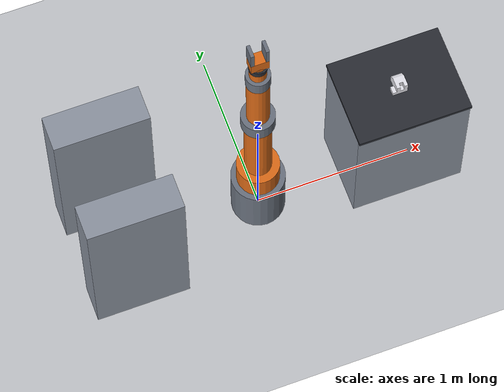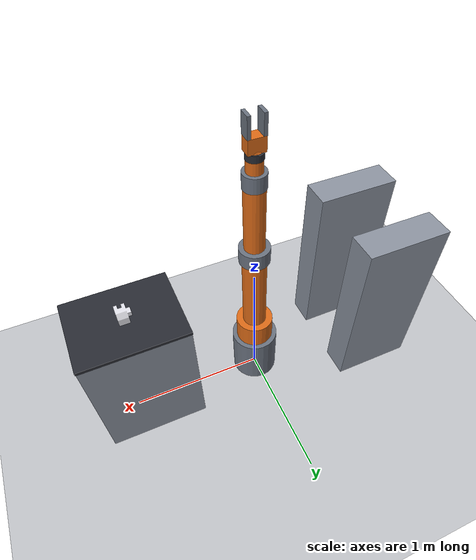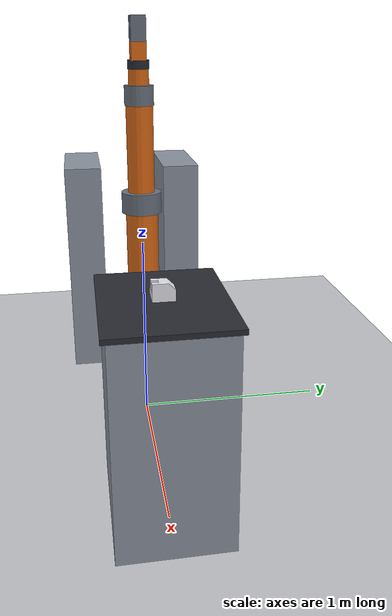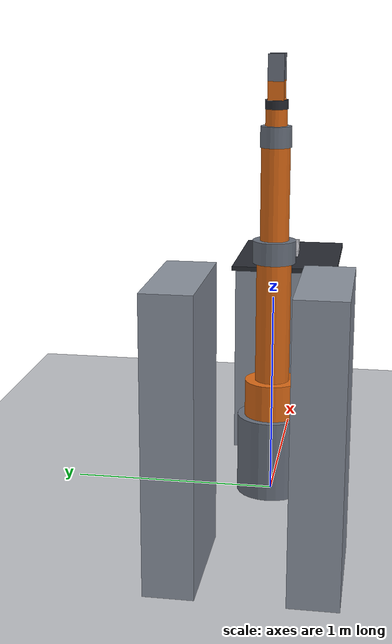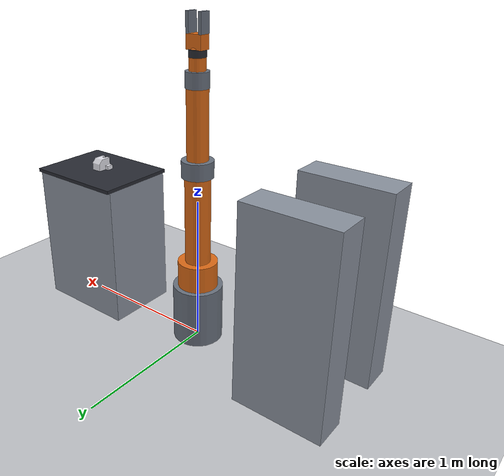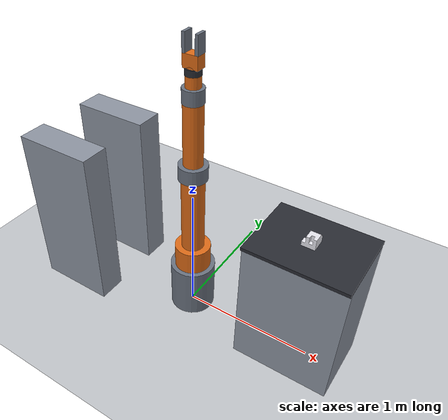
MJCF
<mujoco model="anlage">
  <compiler angle="radian" meshdir="/mnt/c/git/FH/PDE/sim/meshes"/>
  <visual>
    <global offwidth="1600" offheight="1100"/>
    <quality shadowsize="8192" offsamples="8"/>
    <headlight ambient="0.35 0.35 0.38" diffuse="0.35 0.35 0.35" specular="0.1 0.1 0.1"/>
    <map znear="0.01" zfar="60"/>
  </visual>
  <asset>
    <texture type="skybox" builtin="gradient" rgb1="0.62 0.70 0.80" rgb2="0.94 0.95 0.97"
             width="512" height="512"/>
    <texture name="boden" type="2d" builtin="checker" rgb1="0.72 0.73 0.75" rgb2="0.80 0.81 0.83"
             width="512" height="512"/>
    <material name="boden" texture="boden" texrepeat="14 14" reflectance="0.15" specular="0.3"/>
    <material name="orange" rgba="0.87 0.42 0.09 1" specular="0.5" shininess="0.4"/>
    <material name="stahl"  rgba="0.42 0.45 0.50 1" specular="0.7" shininess="0.6"/>
    <material name="dunkel" rgba="0.16 0.17 0.20 1" specular="0.4"/>
    <material name="anlage" rgba="0.55 0.58 0.63 1" specular="0.35" shininess="0.3"/>
    <material name="pa6"    rgba="0.90 0.90 0.93 1" specular="0.25" shininess="0.2"/>
    <mesh name="bauteilB" file="bauteil_B.stl" scale="0.001 0.001 0.001"/>
  </asset>
  <worldbody>
    <light pos="2.5 -2.5 4.5" dir="-0.45 0.45 -1" directional="true"
           diffuse="0.75 0.74 0.72" specular="0.25 0.25 0.25" castshadow="true"/>
    <light pos="-3 2 3.5" dir="0.5 -0.4 -1" directional="true"
           diffuse="0.25 0.26 0.30" castshadow="false"/>
    <geom name="boden" type="plane" size="8 8 0.1" material="boden"/>

    <!-- Pufferband, Entnahmehoehe 1000 -->
    <body pos="0.9 0 0">
      <geom type="box" size="0.36 0.26 0.5" pos="0 0 0.5" material="anlage"/>
      <geom type="box" size="0.36 0.28 0.012" pos="0 0 1.012" material="dunkel"/>
    </body>
    <!-- zwei Foerderketten, Ablagehoehe 1300, Abstand 600 -->
    <body pos="-0.9 0.3 0">
      <geom type="box" size="0.30 0.11 0.65" pos="0 0 0.65" material="anlage"/>
    </body>
    <body pos="-0.9 -0.3 0">
      <geom type="box" size="0.30 0.11 0.65" pos="0 0 0.65" material="anlage"/>
    </body>

    <!-- Bauteil B auf dem Pufferband -->
    <body name="bauteil" pos="0.9 0 1.065">
      <geom type="mesh" mesh="bauteilB" material="pa6"/>
    </body>

  <body name="base" pos="0 0 0">
    <geom type="cylinder" size="0.17 0.2" pos="0 0 0.2" material="stahl"/>
    <body name="shoulder" pos="0 0 0.4">
      <joint name="A1" type="hinge" axis="0 0 1" range="-3.14 3.14"/>
      <geom type="cylinder" size="0.135 0.09" pos="0 0 0.09" material="orange"/>
      <body name="upperarm" pos="0 0 0.18">
        <joint name="A2" type="hinge" axis="0 1 0" range="-2.0 2.0"/>
        <geom type="capsule" size="0.085" fromto="0 0 0 0 0 0.65" material="orange"/>
        <body name="forearm" pos="0 0 0.65">
          <joint name="A3" type="hinge" axis="0 1 0" range="-2.6 2.6"/>
          <geom type="cylinder" size="0.105 0.055" material="stahl"/>
          <geom type="capsule" size="0.070" fromto="0 0 0 0 0 0.55" material="orange"/>
          <body name="wrist" pos="0 0 0.55">
            <joint name="A4" type="hinge" axis="0 1 0" range="-2.2 2.2"/>
            <geom type="cylinder" size="0.075 0.05" material="stahl"/>
            <geom type="capsule" size="0.052" fromto="0 0 0 0 0 0.15" material="orange"/>
            <body name="flange" pos="0 0 0.15">
              <joint name="A5" type="hinge" axis="0 0 1" range="-3.14 3.14"/>
              <geom type="cylinder" size="0.055 0.022" material="dunkel"/>
              <!-- Platzhalter Greifer: Grundkoerper + zwei Backen -->
              <geom type="box" size="0.055 0.038 0.045" pos="0 0 0.065" material="orange"/>
              <geom type="box" size="0.011 0.038 0.062" pos=" 0.046 0 0.170" material="stahl"/>
              <geom type="box" size="0.011 0.038 0.062" pos="-0.046 0 0.170" material="stahl"/>
            </body>
          </body>
        </body>
      </body>
    </body>
  </body>
  </worldbody>
</mujoco>
